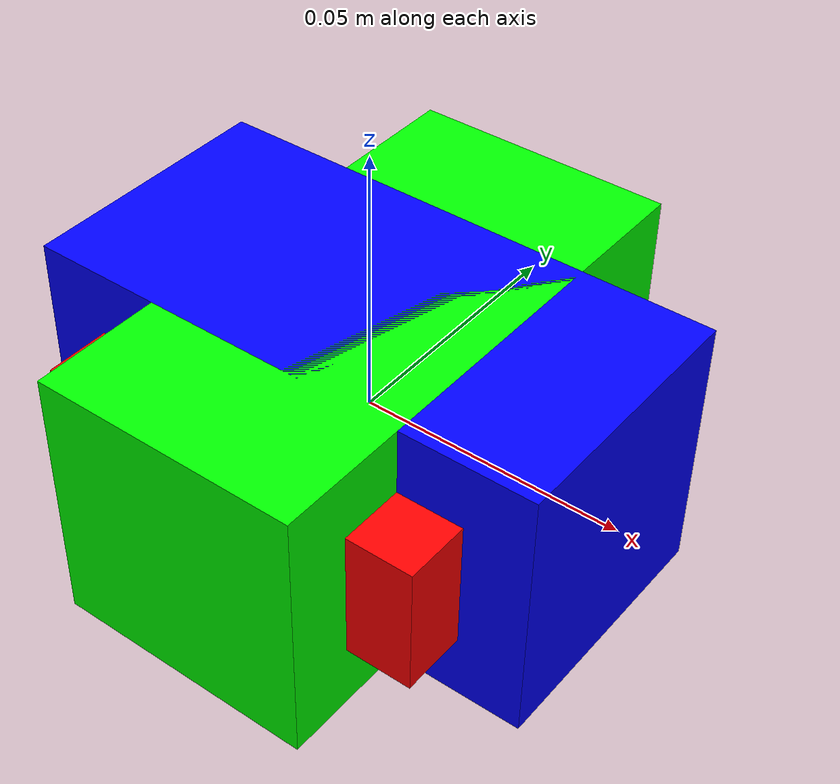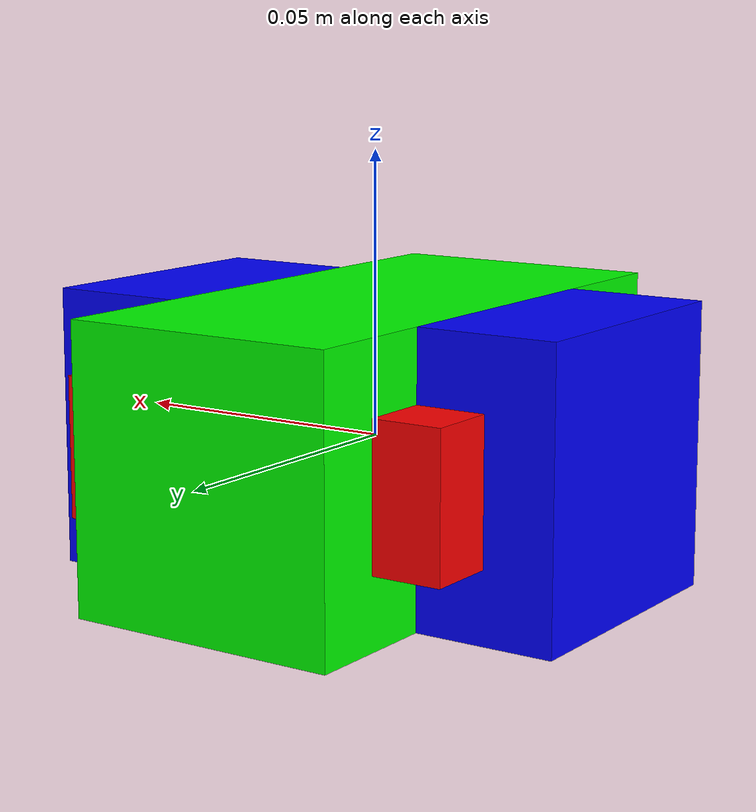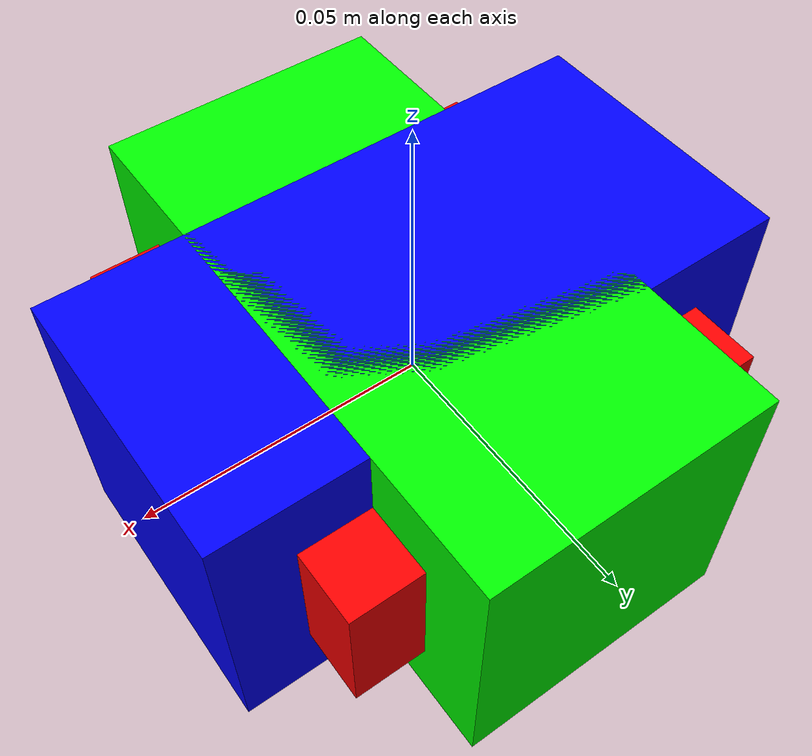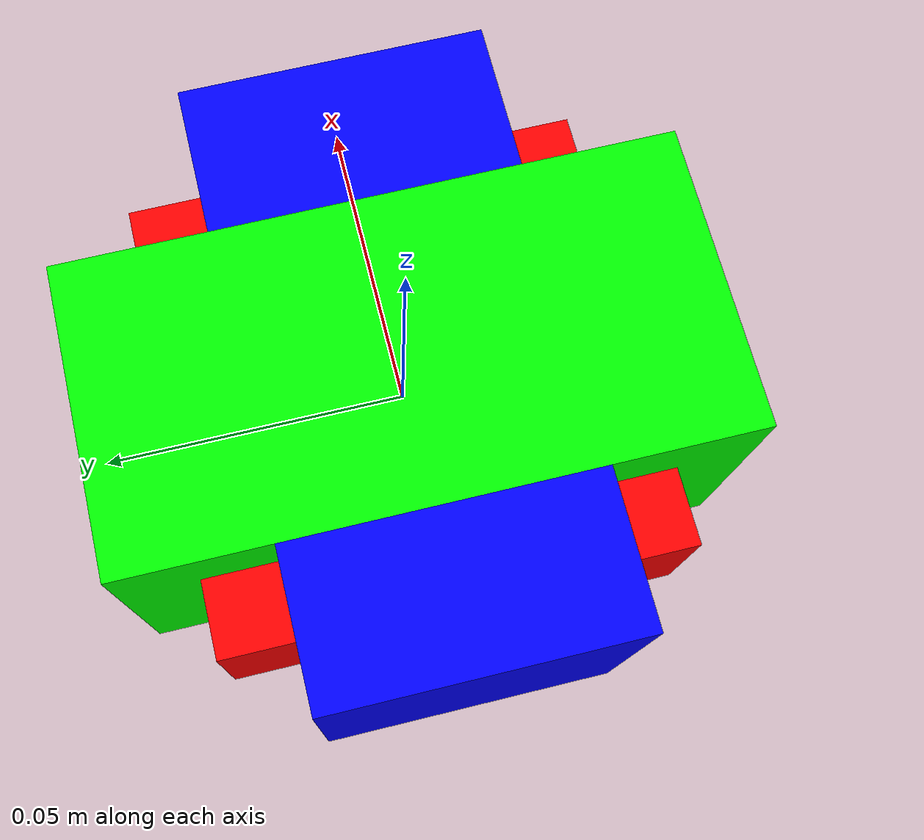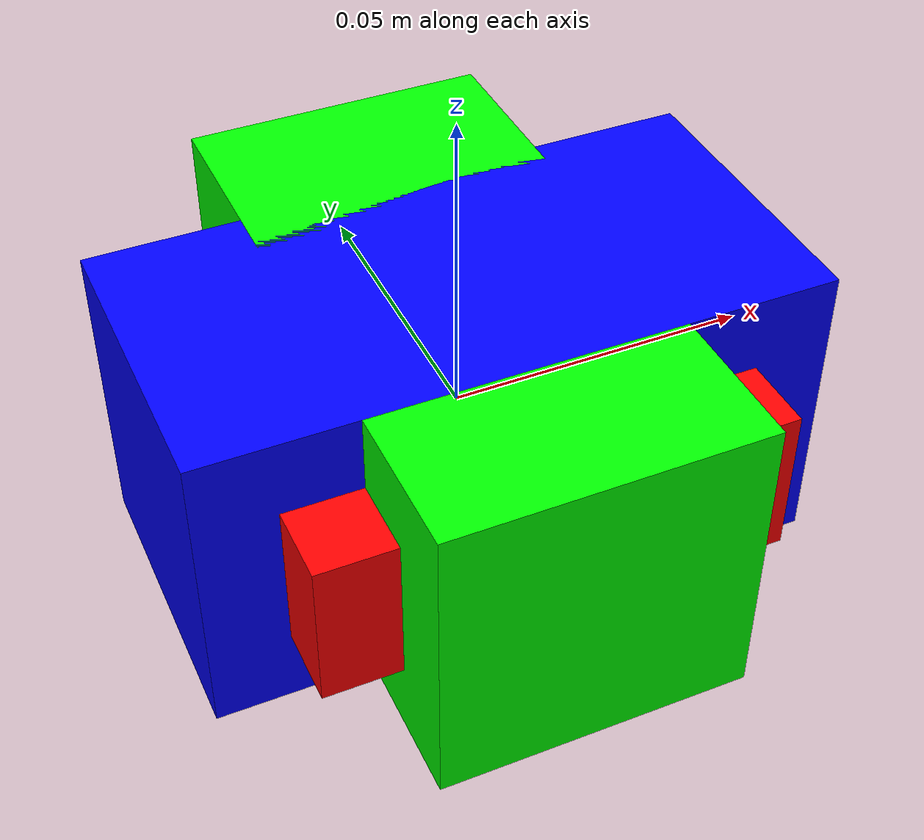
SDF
<?xml version="1.0" encoding="UTF-8"?>
<sdf version='1.9'>
  <model name='gimbal'>
    <self_collide>false</self_collide>
    <static>false</static>

    <!-- Gimbal mount point -->
    <link name="gimbal3d_mount_link">
      <inertial>
        <pose>-0.02552 0 -0.08136 0 0 0</pose>
        <mass>0.1</mass>
        <inertia>
          <ixx>0.001</ixx>
          <ixy>0</ixy>
          <ixz>0</ixz>
          <iyy>0.001</iyy>
          <iyz>0</iyz>
          <izz>0.001</izz>
        </inertia>
      </inertial>
      <visual name="gimbal3d_mount_visual">
        <geometry>
          <box>
            <size>0.075 0.075 0.025</size>
          </box>
        </geometry>
        <material>
          <ambient>1.0 0.0 0.0 1.0</ambient>
          <diffuse>1.0 0.0 0.0 1.0</diffuse>
        </material>
      </visual>
    </link>

    <!-- Gimbal vertical arm -->
    <link name="gimbal3d_vertical_arm_link">
      <inertial>
        <pose>0 0 -0.1283 0 0 0</pose>
        <mass>0.1</mass>
        <inertia>
          <ixx>0.001</ixx>
          <ixy>0</ixy>
          <ixz>0</ixz>
          <iyy>0.001</iyy>
          <iyz>0</iyz>
          <izz>0.001</izz>
        </inertia>
      </inertial>
      <visual name='gimbal3d_vertical_arm_visual'>
        <geometry>
          <box>
            <size>0.05 0.1 0.05</size>
          </box>
        </geometry>
        <material>
          <ambient>0.0 1.0 0.0 1.0</ambient>
          <diffuse>0.0 1.0 0.0 1.0</diffuse>
        </material>
      </visual>
    </link>

    <!-- Yaw joint -->
    <joint name='gimbal3d_vertical_arm_joint' type='revolute'>
      <child>gimbal3d_vertical_arm_link</child>
      <parent>gimbal3d_mount_link</parent>
      <pose>-0.02552 0 0 0 0 0</pose>
      <axis>
        <xyz>0 0 -1</xyz>
        <limit>
          <lower>-1e+16</lower>
          <upper>1e+16</upper>
          <effort>100</effort>
          <velocity>-1</velocity>
        </limit>
        <dynamics>
          <damping>0.1</damping>
        </dynamics>
      </axis>
      <physics>
        <ode>
          <implicit_spring_damper>1</implicit_spring_damper>
          <limit>
            <cfm>0.1</cfm>
            <erp>0.2</erp>
          </limit>
        </ode>
      </physics>
    </joint>

    <!-- Gimbal horizontal arm -->
    <link name="gimbal3d_horizontal_arm_link">
      <inertial>
        <pose>-0.0213 0 -0.162 0 0 0</pose>
        <mass>0.1</mass>
        <inertia>
          <ixx>0.001</ixx>
          <ixy>0</ixy>
          <ixz>0</ixz>
          <iyy>0.001</iyy>
          <iyz>0</iyz>
          <izz>0.001</izz>
        </inertia>
      </inertial>
      <visual name='gimbal3d_horizontal_arm_visual'>
        <geometry>
          <box>
            <size>0.1 0.05 0.05</size>
          </box>
        </geometry>
        <material>
          <ambient>0.0 0.0 1.0 1.0</ambient>
          <diffuse>0.0 0.0 1.0 1.0</diffuse>
        </material>
      </visual>
    </link>

    <!-- Roll joint -->
    <joint name='gimbal3d_horizontal_arm_joint' type='revolute'>
      <child>gimbal3d_horizontal_arm_link</child>
      <parent>gimbal3d_vertical_arm_link</parent>
      <pose>0 0 -0.1619 0 0 0</pose>
      <axis>
        <xyz>-1 0 0</xyz>
        <limit>
          <lower>-0.785398</lower>
          <upper>0.785398</upper>
          <effort>100</effort>
          <velocity>-1</velocity>
        </limit>
        <dynamics>
          <damping>0.1</damping>
        </dynamics>
      </axis>
      <physics>
        <ode>
          <implicit_spring_damper>1</implicit_spring_damper>
          <limit>
            <cfm>0.1</cfm>
            <erp>0.2</erp>
          </limit>
        </ode>
      </physics>
    </joint>

    <!-- Camera -->
    <link name="camera_link">
      <inertial>
        <pose>-0.0412 0 -0.162 0 0 0</pose>
        <mass>0.1</mass>
        <inertia>
          <ixx>0.001</ixx>
          <ixy>0</ixy>
          <ixz>0</ixz>
          <iyy>0.001</iyy>
          <iyz>0</iyz>
          <izz>0.001</izz>
        </inertia>
      </inertial>
      <collision name='gimbal3d_camera_collision'>
        <pose>-0.0412 0 -0.162 0 0 0</pose>
        <geometry>
          <sphere>
            <radius>0.035</radius>
          </sphere>
        </geometry>
        <surface>
          <friction>
            <ode>
              <mu>1</mu>
              <mu2>1</mu2>
            </ode>
          </friction>
          <contact>
            <ode>
              <kp>1e+8</kp>
              <kd>1</kd>
              <max_vel>0.01</max_vel>
              <min_depth>0.001</min_depth>
            </ode>
          </contact>
        </surface>
      </collision>
      <visual name='gimbal3d_camera_visual'>
        <geometry>
          <cone>
            <radius>0.025</radius>
            <length>0.05</length>
          </cone>
        </geometry>
        <material>
          <ambient>0 1 0 1.0</ambient>
          <diffuse>0 1 0 1.0</diffuse>
        </material>
      </visual>

      <sensor name="camera_imu" type="imu">
        <gz_frame_id>camera_link</gz_frame_id>
        <always_on>1</always_on>
        <update_rate>250</update_rate>
        <pose>-0.0412 0 -0.162 0 0 3.14</pose>
        <imu>
          <angular_velocity>
            <x>
              <noise type="gaussian">
                <mean>0</mean>
                <stddev>0.00018665</stddev>
                <dynamic_bias_stddev>3.8785e-05</dynamic_bias_stddev>
                <dynamic_bias_correlation_time>1000</dynamic_bias_correlation_time>
              </noise>
            </x>
            <y>
              <noise type="gaussian">
                <mean>0</mean>
                <stddev>0.00018665</stddev>
                <dynamic_bias_stddev>3.8785e-05</dynamic_bias_stddev>
                <dynamic_bias_correlation_time>1000</dynamic_bias_correlation_time>
              </noise>
            </y>
            <z>
              <noise type="gaussian">
                <mean>0</mean>
                <stddev>0.00018665</stddev>
                <dynamic_bias_stddev>3.8785e-05</dynamic_bias_stddev>
                <dynamic_bias_correlation_time>1000</dynamic_bias_correlation_time>
              </noise>
            </z>
          </angular_velocity>
          <linear_acceleration>
            <x>
              <noise type="gaussian">
                <mean>0</mean>
                <stddev>0.00186</stddev>
                <dynamic_bias_stddev>0.006</dynamic_bias_stddev>
                <dynamic_bias_correlation_time>300</dynamic_bias_correlation_time>
              </noise>
            </x>
            <y>
              <noise type="gaussian">
                <mean>0</mean>
                <stddev>0.00186</stddev>
                <dynamic_bias_stddev>0.006</dynamic_bias_stddev>
                <dynamic_bias_correlation_time>300</dynamic_bias_correlation_time>
              </noise>
            </y>
            <z>
              <noise type="gaussian">
                <mean>0</mean>
                <stddev>0.00186</stddev>
                <dynamic_bias_stddev>0.006</dynamic_bias_stddev>
                <dynamic_bias_correlation_time>300</dynamic_bias_correlation_time>
              </noise>
            </z>
          </linear_acceleration>
        </imu>
      </sensor>

      <sensor name="camera" type="camera">
        <gz_frame_id>camera_link</gz_frame_id>
        <pose>-0.0412 0 -0.162 0 0 3.14</pose>
        <camera>
          <horizontal_fov>2.0</horizontal_fov>
          <image>
            <format>R8G8B8</format>
            <format>R8G8B8</format>
            <width>1280</width>
            <height>720</height>
          </image>
          <clip>
            <near>0.05</near>
            <far>15000</far>
          </clip>
        </camera>
        <always_on>1</always_on>
        <update_rate>30</update_rate>
        <visualize>true</visualize>
      </sensor>
    </link>

    <!-- Pitch joint -->
    <joint name='gimbal3d_camera_joint' type='revolute'>
      <child>camera_link</child>
      <parent>gimbal3d_horizontal_arm_link</parent>
      <pose>-0.0412 0 -0.162 0 0 0</pose>
      <axis>
        <xyz>0 1 0</xyz>
        <limit>
          <lower>-2.35619</lower>
          <upper>0.7854</upper>
          <effort>100</effort>
          <velocity>-1</velocity>
        </limit>
        <dynamics>
          <damping>0.1</damping>
        </dynamics>
      </axis>
      <physics>
        <ode>
          <implicit_spring_damper>1</implicit_spring_damper>
          <limit>
            <cfm>0.1</cfm>
            <erp>0.2</erp>
          </limit>
        </ode>
      </physics>
    </joint>

    <!-- Plugins -->
    <plugin
      filename="gz-sim-joint-position-controller-system"
      name="gz::sim::systems::JointPositionController">
      <joint_name>gimbal3d_horizontal_arm_joint</joint_name>
      <sub_topic>command/gimbal_roll</sub_topic>
      <p_gain>0.8</p_gain>
      <i_gain>0.035</i_gain>
      <d_gain>0.02</d_gain>
      <i_max>0</i_max>
      <i_min>0</i_min>
      <cmd_max>0.3</cmd_max>
      <cmd_min>-0.3</cmd_min>
    </plugin>

    <plugin
      filename="gz-sim-joint-position-controller-system"
      name="gz::sim::systems::JointPositionController">
      <joint_name>gimbal3d_camera_joint</joint_name>
      <sub_topic>command/gimbal_pitch</sub_topic>
      <p_gain>0.8</p_gain>
      <i_gain>0.01245</i_gain>
      <d_gain>0.015</d_gain>
      <i_max>0</i_max>
      <i_min>0</i_min>
      <cmd_max>0.3</cmd_max>
      <cmd_min>-0.3</cmd_min>
    </plugin>

    <plugin
      filename="gz-sim-joint-position-controller-system"
      name="gz::sim::systems::JointPositionController">
      <joint_name>gimbal3d_vertical_arm_joint</joint_name>
      <sub_topic>command/gimbal_yaw</sub_topic>
      <p_gain>0.3</p_gain>
      <i_gain>0.01245</i_gain>
      <d_gain>0.015</d_gain>
      <i_max>0</i_max>
      <i_min>0</i_min>
      <cmd_max>0.3</cmd_max>
      <cmd_min>-0.3</cmd_min>
    </plugin>

  </model>
</sdf>
